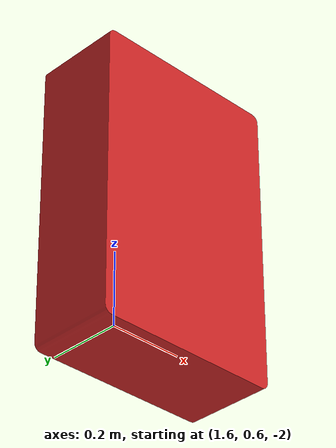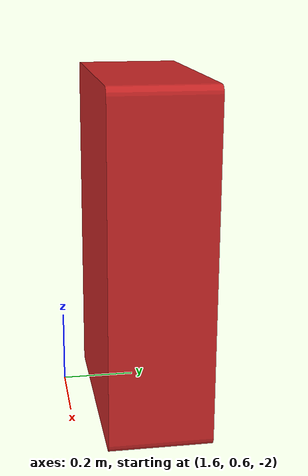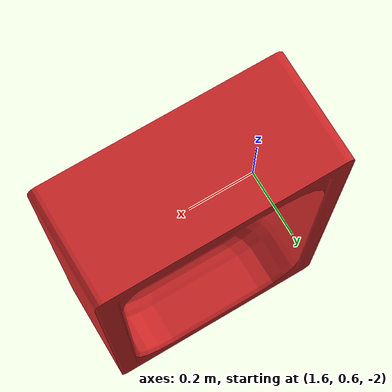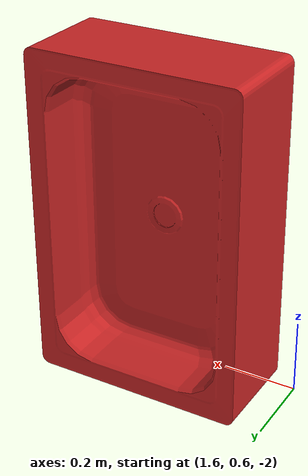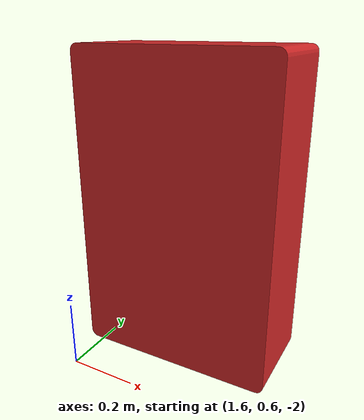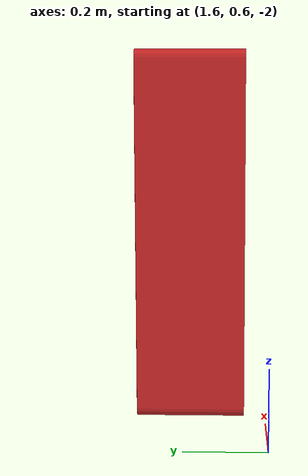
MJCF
<mujoco model="SinkMesh_f73808d7">
  <compiler autolimits="true" boundmass="0.01" angle="radian"/>
  <default>
    <default class="/">
      <default class="__VISUAL_MJT__">
        <geom contype="0" conaffinity="0" group="0" mass="1e-08"/>
      </default>
      <default class="__STRUCTURAL_MJT__">
        <geom contype="8" conaffinity="15" group="4" friction="0.90000000000000002 0.90000000000000002 0.001" density="500" solref="0.025000000000000001 1" solimp="0.998 0.998 0.001"/>
      </default>
      <default class="__DYNAMIC_MJT__">
        <geom contype="1" conaffinity="15" group="4" friction="0.90000000000000002 0.90000000000000002 0.001" density="500" solref="0.025000000000000001 1" solimp="0.998 0.998 0.001"/>
      </default>
      <default class="__ARTICULABLE_DYNAMIC_MJT__">
        <geom contype="0" conaffinity="7" group="4" friction="0.90000000000000002 0.90000000000000002 0.001" density="500" solref="0.025000000000000001 1" solimp="0.998 0.998 0.001"/>
      </default>
    </default>
  </default>
  <asset>
    <texture name="HammeredMetal_AlbedoTransparency" type="2d" file="HammeredMetal_MetallicSmoothness.png"/>
    <material name="material_HammeredMetal_AlbedoTransparency" class="/" texture="HammeredMetal_AlbedoTransparency" specular="0.5" shininess="0.5" rgba="1 1 1 1"/>
    <mesh name="SinkMesh_f73808d7_SinkMesh_f73808d7" class="/" file="SinkMesh_f73808d7_SinkMesh_f73808d7/SinkMesh_f73808d7_SinkMesh_f73808d7.obj" scale="1 1 1" inertia="legacy"/>
  </asset>
  <worldbody>
    <body name="SinkMesh_f73808d7">
      <body name="SinkMesh_f73808d7_SinkMesh_f73808d7" pos="-0 0 0" quat="1 0 0 0">
        <geom name="SinkMesh_f73808d7_SinkMesh_f73808d7" class="__VISUAL_MJT__" type="mesh" material="material_HammeredMetal_AlbedoTransparency" mesh="SinkMesh_f73808d7_SinkMesh_f73808d7"/>
        <geom name="SinkMesh_f73808d7_SinkMesh_f73808d7_PrimitiveCollider_0" class="__DYNAMIC_MJT__" type="box" size="0.34311312437057495 0.083181947469711304 0.018636405467987061" rgba="0 1 0 1" pos="1.6825391054153442 0.82319355010986328 -1.4969609975814819" quat="8.6595606834267297e-17 0.70710678118654757 -8.6595606834267297e-17 0.70710678118654757"/>
        <geom name="SinkMesh_f73808d7_SinkMesh_f73808d7_PrimitiveCollider_1" class="__DYNAMIC_MJT__" type="box" size="0.36193424463272095 0.015107691287994385 0.20915225148200989" rgba="0 1 0 1" pos="1.9009431600570679 0.75511926412582397 -1.5028426647186279" quat="8.6595606834267297e-17 0.70710678118654757 -8.6595606834267297e-17 0.70710678118654757"/>
        <geom name="SinkMesh_f73808d7_SinkMesh_f73808d7_PrimitiveCollider_2" class="__DYNAMIC_MJT__" type="box" size="0.34311312437057495 0.083181947469711304 0.018636405467987061" rgba="0 1 0 1" pos="2.1245391368865967 0.82319355010986328 -1.4969608783721924" quat="8.6595606834267297e-17 0.70710678118654757 -8.6595606834267297e-17 0.70710678118654757"/>
        <geom name="SinkMesh_f73808d7_SinkMesh_f73808d7_PrimitiveCollider_3" class="__DYNAMIC_MJT__" type="box" size="0.22446227073669434 0.083181947469711304 0.018636405467987061" rgba="0 1 0 1" pos="1.8944568634033203 0.82319355010986328 -1.133539080619812" quat="-5.9556997004060113e-23 0.99999999999982236 -1.2246471036423331e-16 -5.9604637669953527e-07"/>
        <geom name="SinkMesh_f73808d7_SinkMesh_f73808d7_PrimitiveCollider_4" class="__DYNAMIC_MJT__" type="box" size="0.22754241526126862 0.083181947469711304 0.018636405467987061" rgba="0 1 0 1" pos="1.8980731964111328 0.82319355010986328 -1.8745391368865967" quat="-5.9556997004060113e-23 0.99999999999982236 -1.2246471036423331e-16 -5.9604637669953527e-07"/>
        <geom name="SinkMesh_f73808d7_SinkMesh_f73808d7_PrimitiveCollider_5" class="__DYNAMIC_MJT__" type="box" size="0.42302519083023071 0.0043002665042877197 0.021647162735462189" rgba="0 1 0 1" pos="1.6429431438446045 0.90331184864044189 -1.5028426647186279" quat="8.6595606834267297e-17 0.70710678118654757 -8.6595606834267297e-17 0.70710678118654757"/>
        <geom name="SinkMesh_f73808d7_SinkMesh_f73808d7_PrimitiveCollider_6" class="__DYNAMIC_MJT__" type="box" size="0.42302519083023071 0.0043002665042877197 0.021647162735462189" rgba="0 1 0 1" pos="2.1529431343078613 0.90331184864044189 -1.5028425455093384" quat="8.6595606834267297e-17 0.70710678118654757 -8.6595606834267297e-17 0.70710678118654757"/>
        <geom name="SinkMesh_f73808d7_SinkMesh_f73808d7_PrimitiveCollider_7" class="__DYNAMIC_MJT__" type="box" size="0.27911245822906494 0.0043002665042877197 0.021647172048687935" rgba="0 1 0 1" pos="1.8978426456451416 0.90331184864044189 -1.9030568599700928" quat="1.2246471036425419e-16 -1.1920927533992738e-07 5.2939552892506906e-23 0.99999999999999289"/>
        <geom name="SinkMesh_f73808d7_SinkMesh_f73808d7_PrimitiveCollider_8" class="__DYNAMIC_MJT__" type="box" size="0.27911245822906494 0.0043002665042877197 0.021647172048687935" rgba="0 1 0 1" pos="1.8978425264358521 0.90331184864044189 -1.0980567932128906" quat="1.2246471036425419e-16 -1.1920927533992738e-07 5.2939552892506906e-23 0.99999999999999289"/>
      </body>
    </body>
  </worldbody>
</mujoco>
